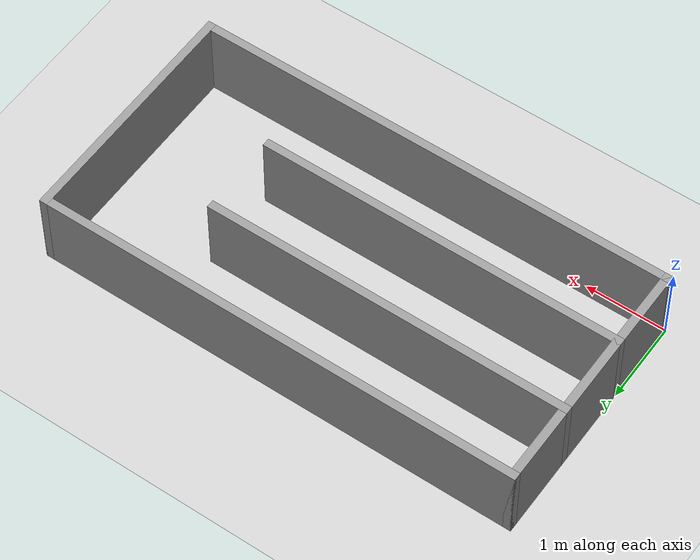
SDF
<?xml version="1.0"?>
<sdf version="1.9">
  <world name="maze_world">

    <physics name="default" type="ignored">
      <max_step_size>0.001</max_step_size>
      <real_time_factor>1.0</real_time_factor>
    </physics>
    <plugin filename="gz-sim-physics-system"
            name="gz::sim::systems::Physics"/>
    <plugin filename="gz-sim-user-commands-system"
            name="gz::sim::systems::UserCommands"/>
    <plugin filename="gz-sim-scene-broadcaster-system"
            name="gz::sim::systems::SceneBroadcaster"/>
    <plugin filename="gz-sim-sensors-system"
            name="gz::sim::systems::Sensors">
      <render_engine>ogre2</render_engine>
    </plugin>

    <light name="sun" type="directional">
      <cast_shadows>true</cast_shadows>
      <pose>0 0 10 0 0 0</pose>
      <diffuse>0.8 0.8 0.8 1</diffuse>
      <specular>0.2 0.2 0.2 1</specular>
      <direction>-0.5 0.1 -0.9</direction>
    </light>

    <model name="ground_plane">
      <static>true</static>
      <link name="link">
        <collision name="collision">
          <geometry><plane><normal>0 0 1</normal><size>100 100</size></plane></geometry>
        </collision>
        <visual name="visual">
          <geometry><plane><normal>0 0 1</normal><size>100 100</size></plane></geometry>
          <material><ambient>0.8 0.8 0.8 1</ambient><diffuse>0.8 0.8 0.8 1</diffuse></material>
        </visual>
      </link>
    </model>

    <model name="wall_south">
      <static>true</static>
      <pose>3.0 0.05 0.5 0 0 0</pose>
      <link name="link">
        <collision name="col"><geometry><box><size>6.0 0.1 1.0</size></box></geometry></collision>
        <visual name="vis">
          <geometry><box><size>6.0 0.1 1.0</size></box></geometry>
          <material><ambient>0.6 0.6 0.6 1</ambient><diffuse>0.6 0.6 0.6 1</diffuse></material>
        </visual>
      </link>
    </model>

    <model name="wall_north">
      <static>true</static>
      <pose>3.0 2.95 0.5 0 0 0</pose>
      <link name="link">
        <collision name="col"><geometry><box><size>6.0 0.1 1.0</size></box></geometry></collision>
        <visual name="vis">
          <geometry><box><size>6.0 0.1 1.0</size></box></geometry>
          <material><ambient>0.6 0.6 0.6 1</ambient><diffuse>0.6 0.6 0.6 1</diffuse></material>
        </visual>
      </link>
    </model>

    <model name="wall_west">
      <static>true</static>
      <pose>0.05 1.5 0.5 0 0 0</pose>
      <link name="link">
        <collision name="col"><geometry><box><size>0.1 3.0 1.0</size></box></geometry></collision>
        <visual name="vis">
          <geometry><box><size>0.1 3.0 1.0</size></box></geometry>
          <material><ambient>0.6 0.6 0.6 1</ambient><diffuse>0.6 0.6 0.6 1</diffuse></material>
        </visual>
      </link>
    </model>

    <model name="wall_east">
      <static>true</static>
      <pose>5.95 1.5 0.5 0 0 0</pose>
      <link name="link">
        <collision name="col"><geometry><box><size>0.1 3.0 1.0</size></box></geometry></collision>
        <visual name="vis">
          <geometry><box><size>0.1 3.0 1.0</size></box></geometry>
          <material><ambient>0.6 0.6 0.6 1</ambient><diffuse>0.6 0.6 0.6 1</diffuse></material>
        </visual>
      </link>
    </model>

    <!-- Inner wall A: y=1.0, x=[0, 4.5]; centre=(2.25, 1.0) -->
    <model name="inner_wall_a">
      <static>true</static>
      <pose>2.25 1.0 0.5 0 0 0</pose>
      <link name="link">
        <collision name="col"><geometry><box><size>4.5 0.1 1.0</size></box></geometry></collision>
        <visual name="vis">
          <geometry><box><size>4.5 0.1 1.0</size></box></geometry>
          <material><ambient>0.6 0.6 0.6 1</ambient><diffuse>0.6 0.6 0.6 1</diffuse></material>
        </visual>
      </link>
    </model>

    <!-- Inner wall B: y=2.0, x=[0, 4.5]; centre=(2.25, 2.0) -->
    <model name="inner_wall_b">
      <static>true</static>
      <pose>2.25 2.0 0.5 0 0 0</pose>
      <link name="link">
        <collision name="col"><geometry><box><size>4.5 0.1 1.0</size></box></geometry></collision>
        <visual name="vis">
          <geometry><box><size>4.5 0.1 1.0</size></box></geometry>
          <material><ambient>0.6 0.6 0.6 1</ambient><diffuse>0.6 0.6 0.6 1</diffuse></material>
        </visual>
      </link>
    </model>

    <!-- Goal (0.5, 2.5): no Gazebo model. The goal_checker_node publishes a
         Marker on /goal_marker for RViz. -->

  </world>
</sdf>
